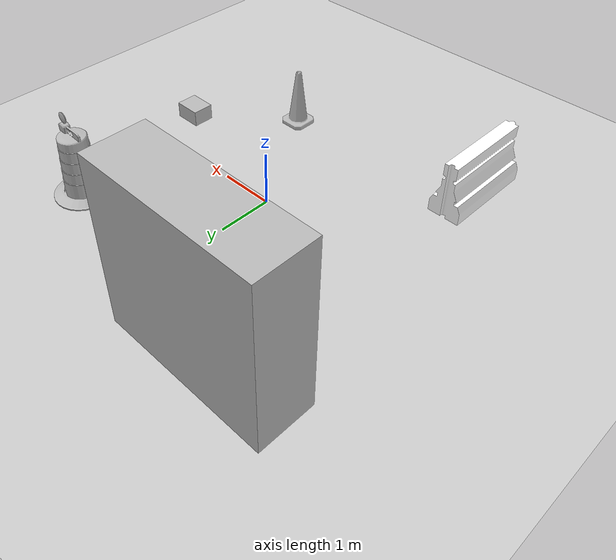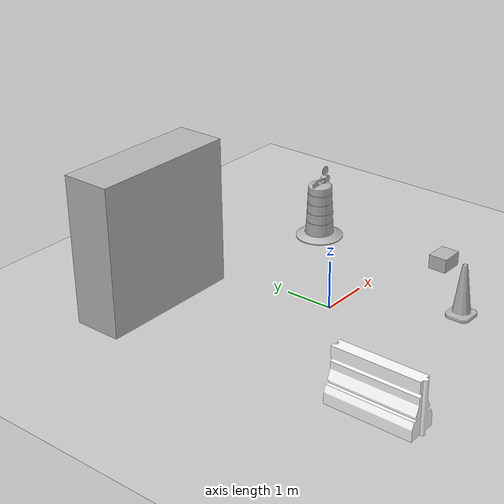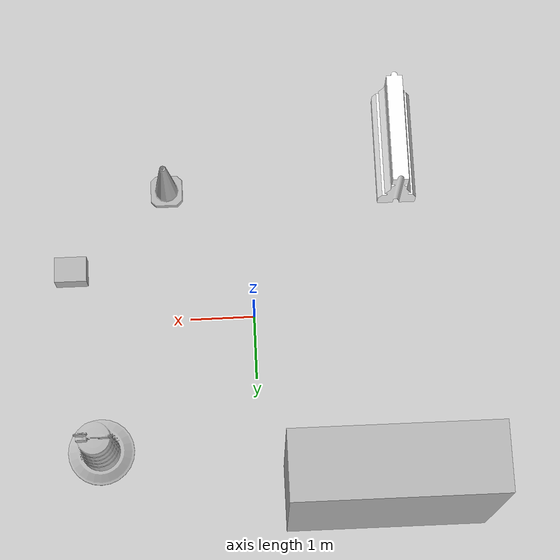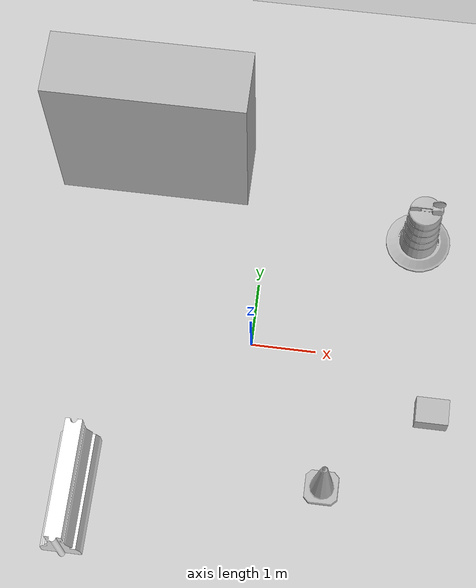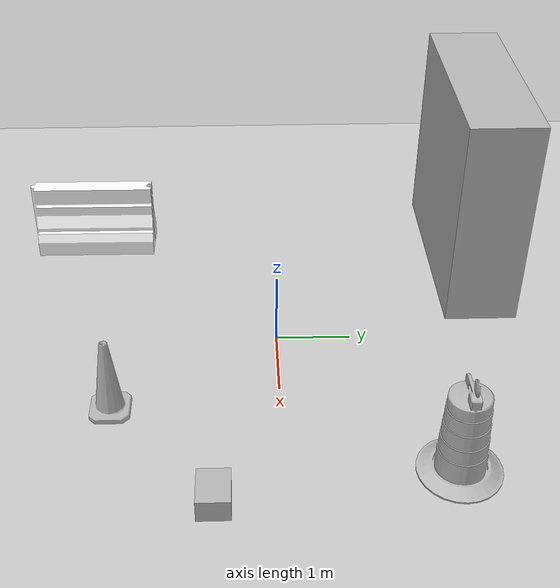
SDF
<sdf version="1.7">
 <world name="default">
  <light name="sun" type="directional">
   <pose>0 0 10 0 -0 0</pose>
   <diffuse>0.8 0.8 0.8 1</diffuse>
   <specular>0.2 0.2 0.2 1</specular>
   <attenuation>
    <range>1000</range>
    <constant>0.9</constant>
    <linear>0.01</linear>
    <quadratic>0.001</quadratic>
   </attenuation>
   <direction>-0.5 0.1 -0.9</direction>
   <spot><inner_angle>0</inner_angle><outer_angle>0</outer_angle><falloff>0</falloff></spot>
  </light>
  <model name="ground_plane">
   <static>1</static>
   <link name="link">
    <collision name="collision">
     <geometry><plane><normal>0 0 1</normal><size>100 100</size></plane></geometry>
     <surface>
      <contact><collide_bitmask>65535</collide_bitmask></contact>
      <friction><ode><mu>100</mu><mu2>50</mu2></ode></friction>
     </surface>
    </collision>
    <visual name="visual">
     <cast_shadows>0</cast_shadows>
     <geometry><plane><normal>0 0 1</normal><size>100 100</size></plane></geometry>
     <material>
      <script><uri>file://media/materials/scripts/gazebo.material</uri><name>Gazebo/Grey</name></script>
     </material>
    </visual>
   </link>
  </model>
  <gravity>0 0 -9.8</gravity>
  <magnetic_field>6e-06 2.3e-05 -4.2e-05</magnetic_field>
  <atmosphere type="adiabatic"/>
  <physics type="ode">
   <max_step_size>0.001</max_step_size>
   <real_time_factor>1</real_time_factor>
   <real_time_update_rate>1000</real_time_update_rate>
  </physics>
  <scene><ambient>0.4 0.4 0.4 1</ambient><background>0.7 0.7 0.7 1</background><shadows>1</shadows></scene>
  <spherical_coordinates>
   <surface_model>EARTH_WGS84</surface_model>
   <latitude_deg>0</latitude_deg>
   <longitude_deg>0</longitude_deg>
   <elevation>0</elevation>
   <heading_deg>0</heading_deg>
  </spherical_coordinates>
  <model name="drc_practice_white_jersey_barrier">
   <static>1</static>
   <link name="link">
    <visual name="visual">
     <geometry>
      <mesh><uri>model://drc_practice_white_jersey_barrier/meshes/jersey_barrier.dae</uri></mesh>
     </geometry>
    </visual>
    <collision name="collision">
     <geometry>
      <mesh><uri>model://drc_practice_white_jersey_barrier/meshes/jersey_barrier.dae</uri></mesh>
     </geometry>
    </collision>
   </link>
   <pose>-2.34726 -2.67466 0 0 -0 0</pose>
  </model>
  <model name="Construction Cone">
   <link name="link">
    <collision name="collision">
     <geometry>
      <mesh><scale>10 10 10</scale><uri>model://construction_cone/meshes/construction_cone.dae</uri></mesh>
     </geometry>
    </collision>
    <visual name="visual">
     <geometry>
      <mesh><scale>10 10 10</scale><uri>model://construction_cone/meshes/construction_cone.dae</uri></mesh>
     </geometry>
    </visual>
    <inertial>
     <inertia><ixx>1</ixx><ixy>0</ixy><ixz>0</ixz><iyy>1</iyy><iyz>0</iyz><izz>1</izz></inertia>
     <mass>1</mass>
    </inertial>
   </link>
   <pose>1.31916 -2.12749 -0 0 -1e-06 0</pose>
  </model>
  <model name="Construction Barrel">
   <link name="link">
    <inertial>
     <pose>0 0 0.4 0 -0 0</pose>
     <mass>500</mass>
     <inertia><ixx>51.2096</ixx><iyy>51.2096</iyy><izz>25</izz><ixy>0</ixy><ixz>0</ixz><iyz>0</iyz></inertia>
    </inertial>
    <collision name="collision">
     <geometry><mesh><uri>model://construction_barrel/meshes/construction_barrel.dae</uri></mesh></geometry>
    </collision>
    <visual name="visual">
     <geometry><mesh><uri>model://construction_barrel/meshes/construction_barrel.dae</uri></mesh></geometry>
    </visual>
   </link>
   <pose>2.4281 2.04609 -1e-06 0 5e-06 -1e-05</pose>
  </model>
  <model name="cardboard_box">
   <pose>2.84529 -0.815223 0.149 0 -0 0</pose>
   <link name="link">
    <inertial>
     <mass>2</mass>
     <inertia>
      <ixx>0.0416667</ixx>
      <ixy>0</ixy>
      <ixz>0</ixz>
      <iyy>0.0566667</iyy>
      <iyz>0</iyz>
      <izz>0.0683333</izz>
     </inertia>
    </inertial>
    <collision name="collision">
     <geometry><box><size>0.5 0.4 0.3</size></box></geometry>
     <surface>
      <friction><ode><mu>1</mu><mu2>1</mu2></ode></friction>
      <contact><ode><kp>1e+07</kp><kd>1</kd><min_depth>0.001</min_depth><max_vel>0.1</max_vel></ode></contact>
     </surface>
    </collision>
    <visual name="visual">
     <pose>0 0 -0.15 0 -0 0</pose>
     <geometry>
      <mesh><uri>model://cardboard_box/meshes/cardboard_box.dae</uri><scale>1.25932 1.00745 0.755591</scale></mesh>
     </geometry>
    </visual>
   </link>
  </model>
  <model name="brick_box_3x1x3">
   <static>1</static>
   <link name="chassis">
    <pose>0 0 1.5 0 -0 0</pose>
    <collision name="collision"><geometry><box><size>3 1 3</size></box></geometry></collision>
    <visual name="visual">
     <geometry><mesh><uri>model://brick_box_3x1x3/meshes/simple_box.dae</uri><scale>3 1 3</scale></mesh></geometry>
     <material>
      <script>
       <uri>model://brick_box_3x1x3/materials/scripts</uri>
       <uri>model://brick_box_3x1x3/materials/textures</uri>
       <name>BrickBox/Diffuse</name>
      </script>
     </material>
    </visual>
   </link>
   <pose>-1.8513 2.87556 0 0 -0 0</pose>
  </model>
 </world>
</sdf>
